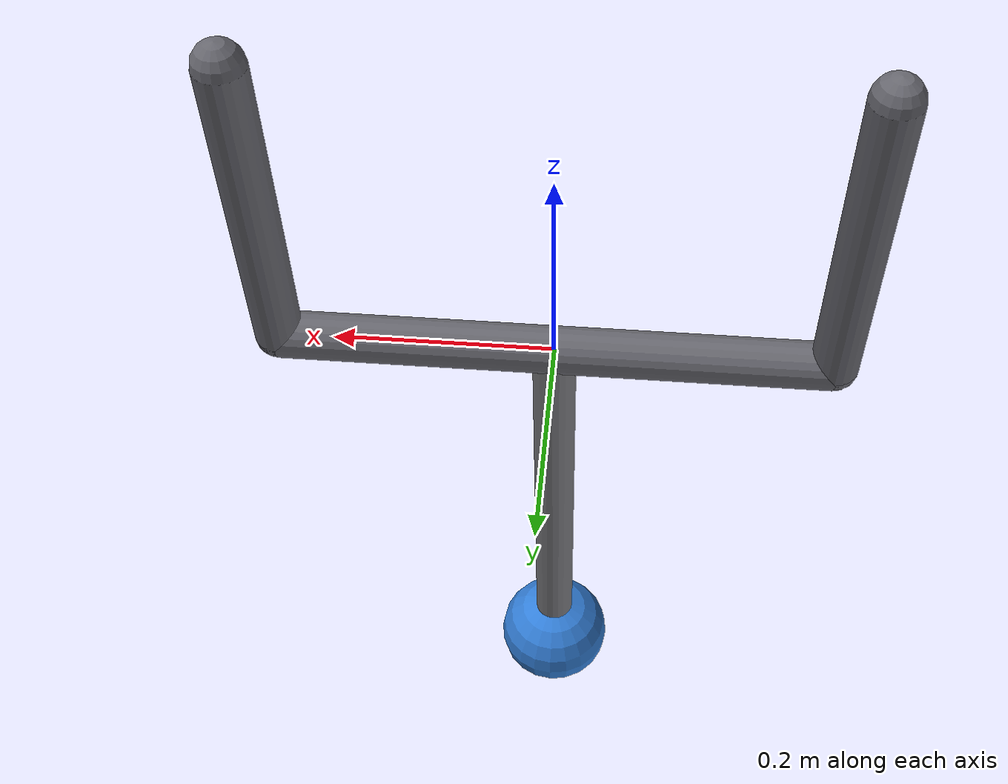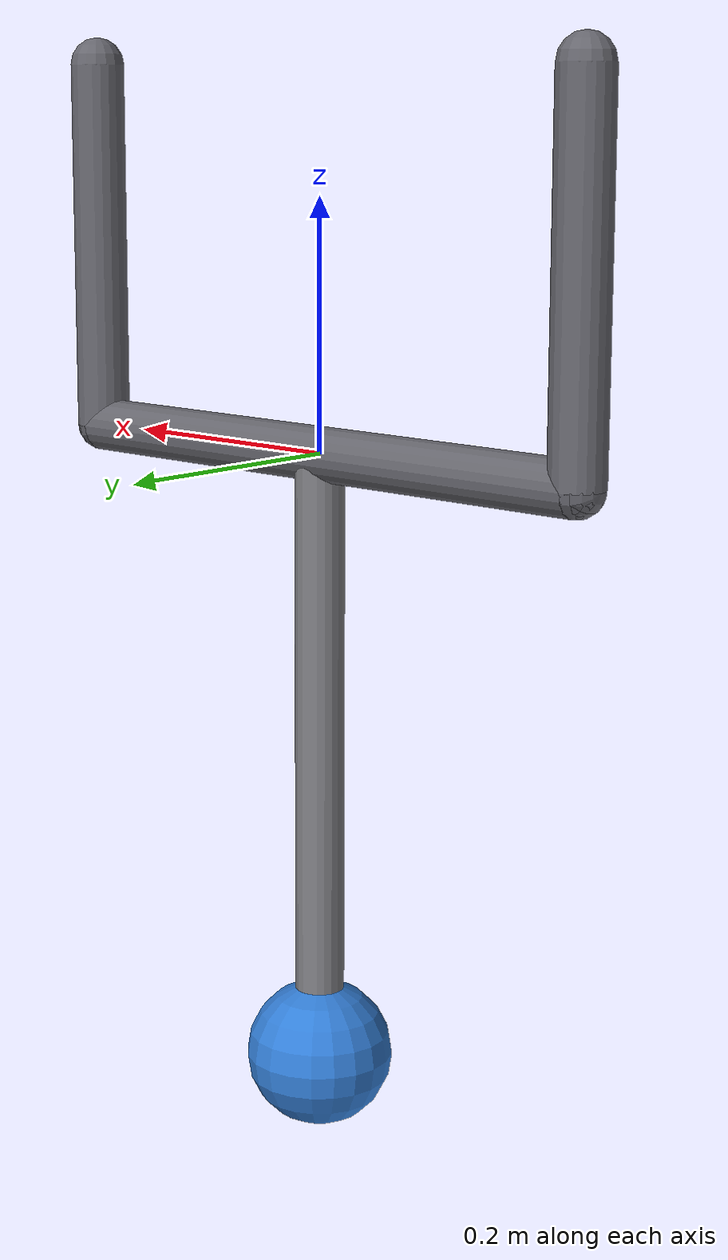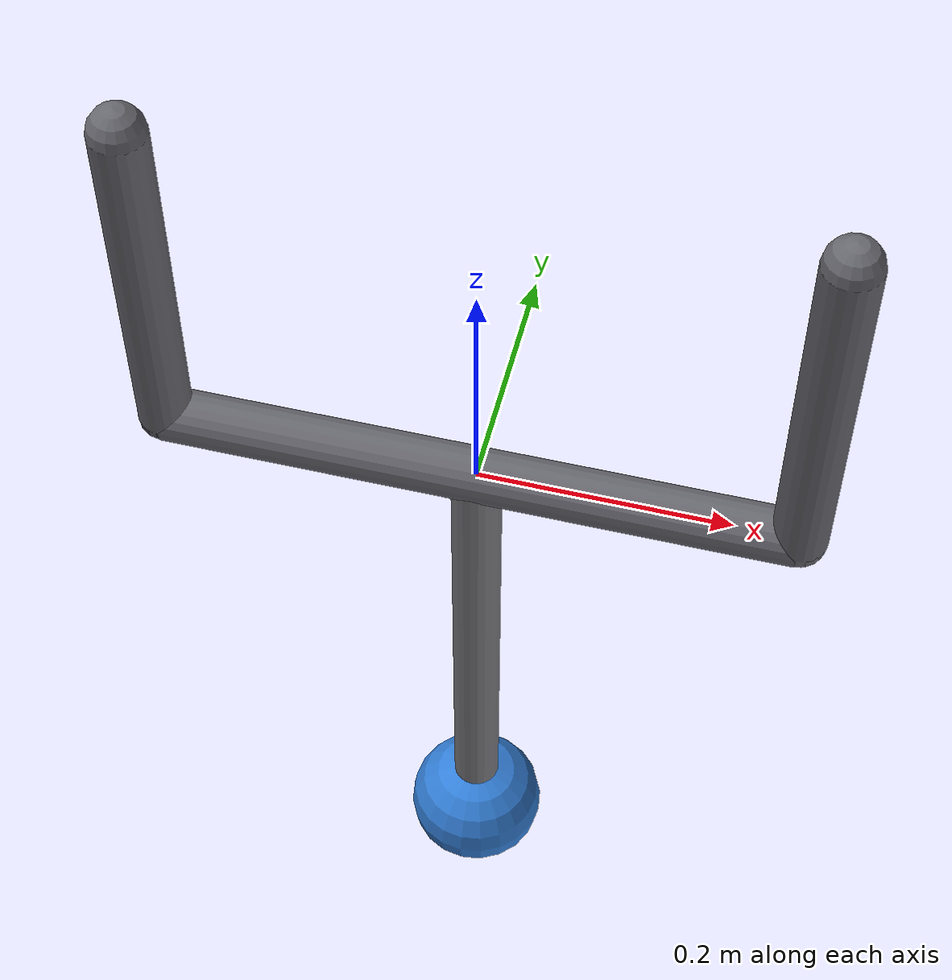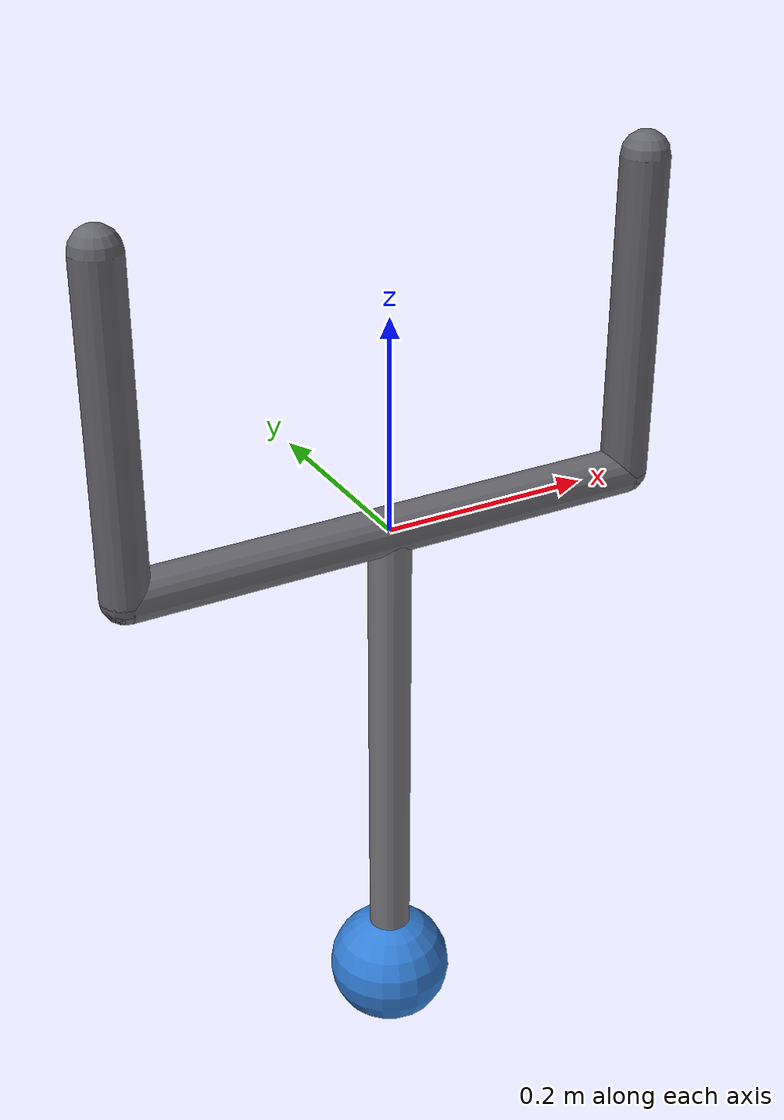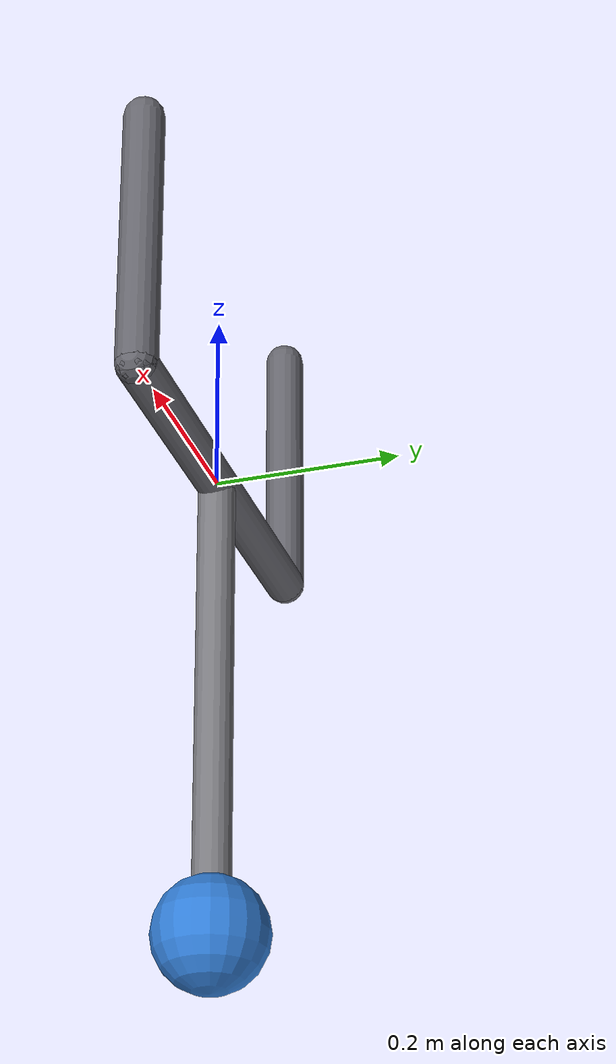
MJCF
<mujoco model="joint_pos_vel">
    <compiler angle="radian"/>
    <option gravity="0 0 -9.81" timestep="0.001" integrator="RK4">
        <flag energy="enable"/>
    </option>

    <default>
        <geom contype="0" conaffinity="0"/>
    </default>

    <worldbody>
        <!-- Support frame -->
        <geom name="beam" type="capsule" size="0.022"
              fromto="-0.25 0 0  0.25 0 0" rgba="0.40 0.40 0.43 1"/>
        <geom name="post_l" type="capsule" size="0.022"
              fromto="-0.25 0 0  -0.25 0 0.30" rgba="0.40 0.40 0.43 1"/>
        <geom name="post_r" type="capsule" size="0.022"
              fromto="0.25 0 0  0.25 0 0.30" rgba="0.40 0.40 0.43 1"/>

        <body name="arm" pos="0 0 0">
            <joint name="hinge" type="hinge" axis="0 1 0" damping="0"/>
            <inertial pos="0 0 -0.25" mass="1.0" diaginertia="0.01 0.01 0.01"/>
            <geom name="rod" type="capsule" size="0.02"
                  fromto="0 0 0  0 0 -0.5" rgba="0.48 0.48 0.50 1"/>
            <geom name="tip" type="sphere" size="0.06"
                  pos="0 0 -0.5" rgba="0.2 0.5 0.85 1"/>
        </body>
    </worldbody>

    <sensor>
        <jointpos name="pos" joint="hinge"/>
        <jointvel name="vel" joint="hinge"/>
    </sensor>
</mujoco>
